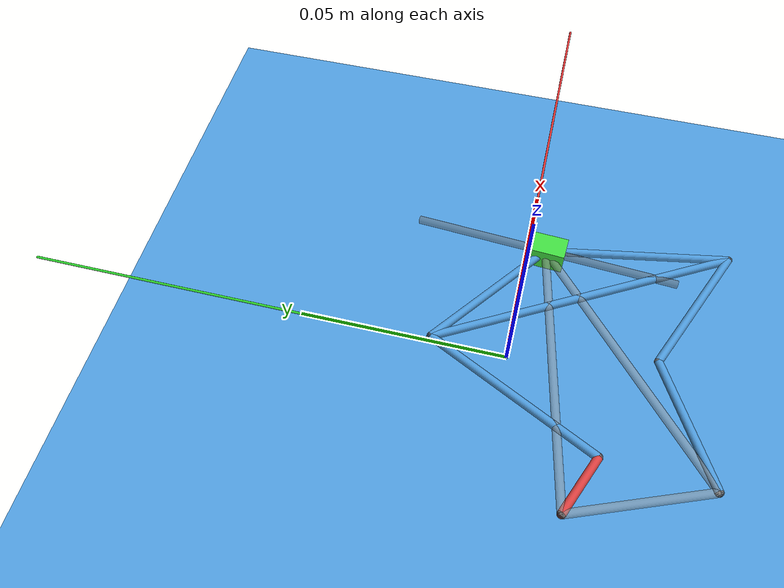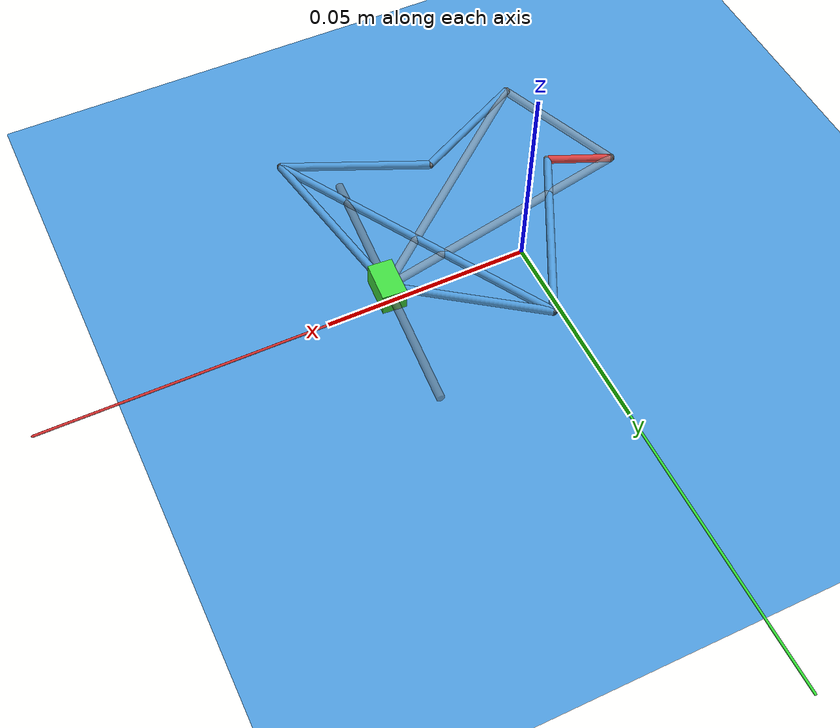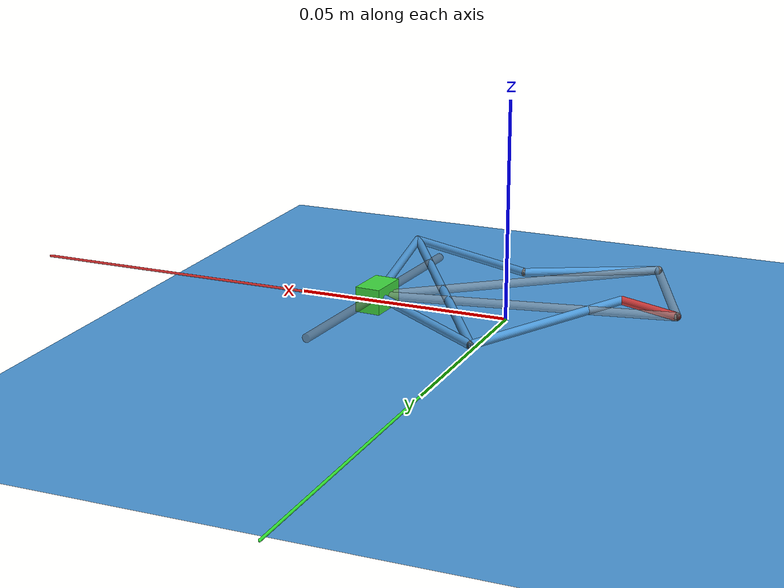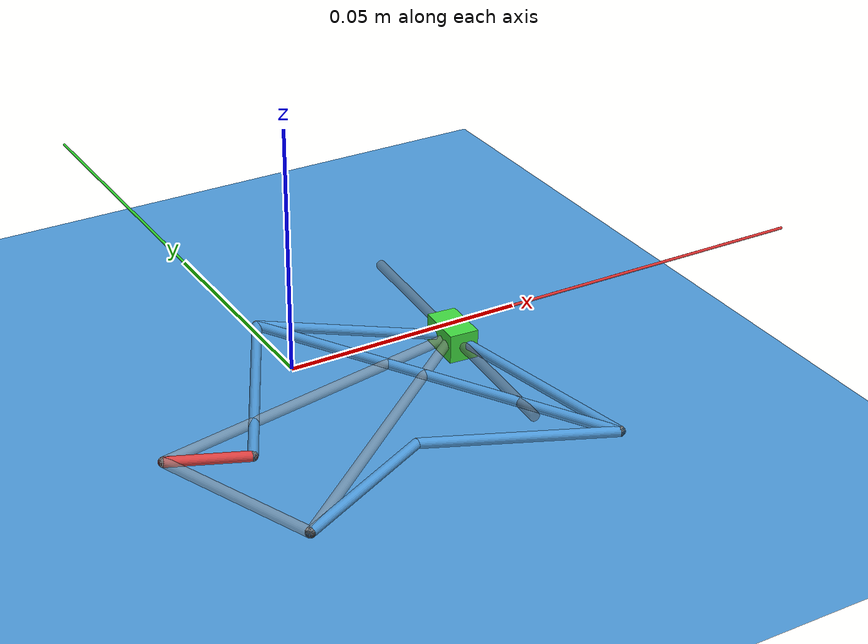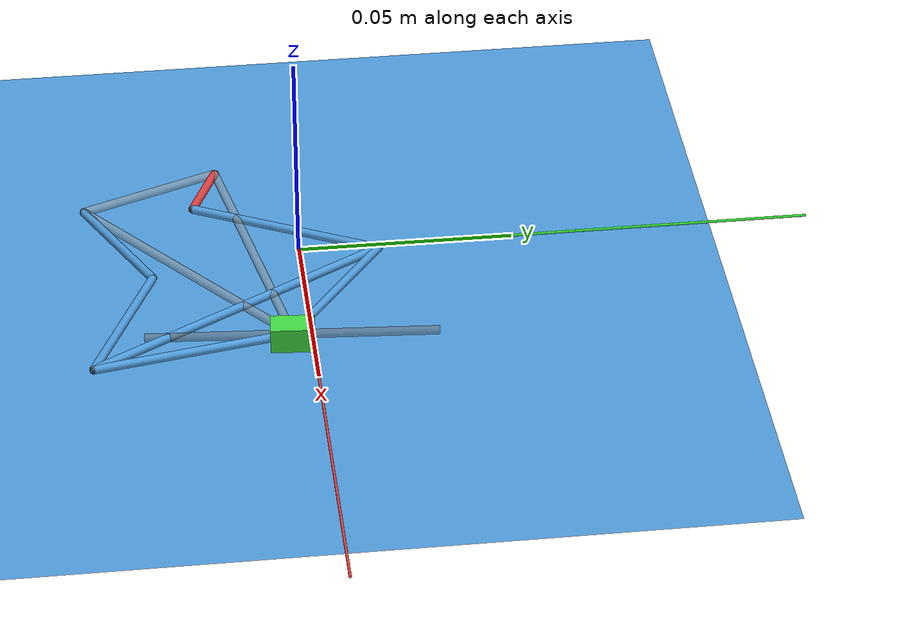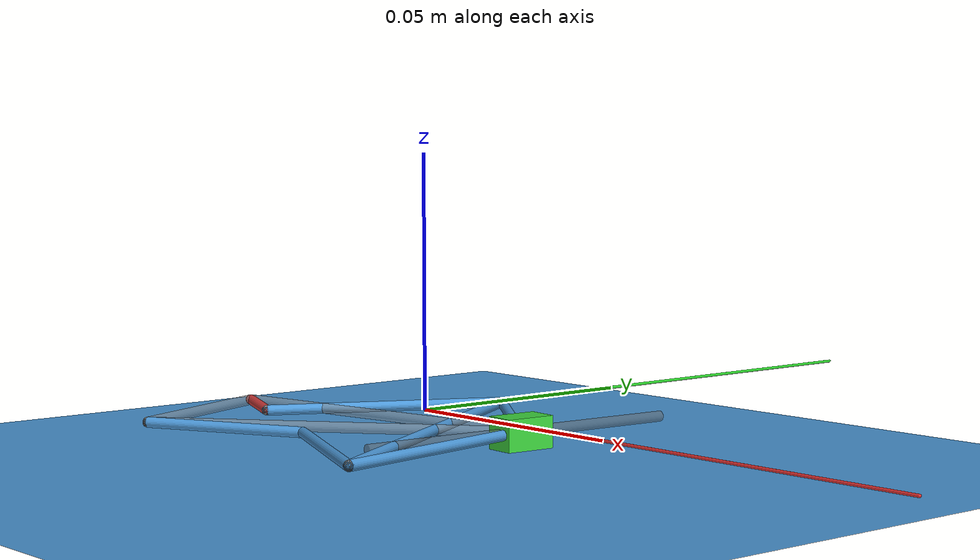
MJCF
<?xml version="1.0" ?>
<mujoco model="topo10_s0">
  <compiler angle="radian" inertiafromgeom="false"/>
  <option timestep="0.001" gravity="0 0 -9.81" integrator="implicit" iterations="500" tolerance="1e-12" noslip_iterations="10" noslip_tolerance="1e-8"/>
  <visual>
    <quality shadowsize="16384"/>
  </visual>
  <asset>
    <texture name="grid" type="2d" builtin="checker" rgb1="0.9 0.9 0.9" rgb2="0.8 0.8 0.8" width="100" height="100"/>
    <material name="grid_mat" texture="grid" texrepeat="50 50" texuniform="true"/>
  </asset>
  <default>
    <geom rgba="0.3 0.6 0.85 1" contype="0" conaffinity="0"/>
    <joint limited="false" damping="0.01"/>
    <equality solref="0.002 1" solimp="0.99 0.999 0.001 0.5 2"/>
  </default>
  <worldbody>
    <light pos="0 0 5" dir="0 0 -1" diffuse="1 1 1"/>
    <geom name="floor" type="plane" pos="0 0 -0.01" size="0.1 0.1 0.01" material="grid_mat"/>

    <!-- ======== XYZ Axes at origin ======== -->
    <geom type="capsule" fromto="0 0 0 0.12 0 0" size="0.0003" rgba="0.9 0.2 0.2 1" contype="0" conaffinity="0"/>
    <geom type="capsule" fromto="0 0 0 0 0.12 0" size="0.0003" rgba="0.2 0.9 0.2 1" contype="0" conaffinity="0"/>
    <geom type="capsule" fromto="0 0 0 0 0 0.05" size="0.0003" rgba="0.2 0.2 0.9 1" contype="0" conaffinity="0"/>
    <geom type="capsule" fromto="-0.021563436 -0.049170096 0 0.033263081 -0.004386727 0" size="0.001" rgba="0.6 0.6 0.6 0.5" contype="0" conaffinity="0"/>
    <geom type="capsule" fromto="0.033263081 -0.004386727 0 -0.034434885 -0.017326647 0" size="0.001" rgba="0.6 0.6 0.6 0.5" contype="0" conaffinity="0"/>
    <geom type="capsule" fromto="-0.034434885 -0.017326647 0 -0.021563436 -0.049170096 0" size="0.001" rgba="0.6 0.6 0.6 0.5" contype="0" conaffinity="0"/>
    <!-- Slider rail (fixed to ground) -->
    <geom type="cylinder" fromto="0.0309260 -0.0376380 0 0.0356002 0.0288646 0" size="0.001" rgba="0.4 0.4 0.4 0.5" contype="0" conaffinity="0"/>
    <body name="virtual_1" pos="0.033263081 -0.004386727 0">
      <inertial pos="0 0 0" mass="0.0016" diaginertia="1.6e-07 1.6e-07 1.6e-07"/>
      <joint name="P0" type="slide" axis="0.070113041 0.99753905 0"/>
      <geom type="box" size="0.003 0.005 0.003" euler="0 0 -0.0702" rgba="0.25 0.85 0.25 1"/>
      <site name="site_virtual_1_j0" pos="0 0 0" size="0.001"/>
      <site name="site_virtual_1_j7" pos="0 0 0" size="0.001"/>
      <body name="link_3" pos="0 0 0">
        <inertial pos="-0.007809814 -0.0074249784 0" mass="0.000995052" diaginertia="1.09197e-06 1.09197e-06 1.09197e-06"/>
        <joint name="D7" type="hinge" axis="0 0 1"/>
        <geom type="capsule" fromto="0 0 0 0.008365192 -0.045134675 0" size="0.001"/>
        <geom type="capsule" fromto="0 0 0 -0.031794634 0.02285974 0" size="0.001"/>
        <geom type="sphere" size="0.001"/>
        <geom type="capsule" fromto="0.008365192 -0.045134675 0 -0.031794634 0.02285974 0" size="0.001"/>
        <site name="site_link_3_j3" pos="0.008365192 -0.045134675 0" size="0.001"/>
        <site name="site_link_3_j5" pos="-0.031794634 0.02285974 0" size="0.001"/>
        <site name="site_link_3_j7" pos="0 0 0" size="0.001"/>
      </body>
    </body>
    <body name="link_4" pos="-0.034434885 -0.017326647 0">
      <inertial pos="0.0073073139 -0.0030854415 0" mass="0.00634560" diaginertia="1.33082e-07 1.33082e-07 1.33082e-07"/>
      <joint name="J1" type="hinge" axis="0 0 1" limited="true" range="0 2.4778759"/>
      <geom type="capsule" fromto="0 0 0 0.014614628 -0.006170883 0" size="0.001" rgba="0.85 0.25 0.25 1"/>
      <site name="site_link_4_j1" pos="0 0 0" size="0.001"/>
      <site name="site_link_4_j6" pos="0.014614628 -0.006170883 0" size="0.001"/>
      <body name="link_2" pos="0.014614628 -0.006170883 0">
        <inertial pos="0.010644352 0.020985271 0" mass="0.01882432" diaginertia="3.47426e-06 3.47426e-06 3.47426e-06"/>
        <joint name="J6" type="hinge" axis="0 0 1"/>
        <geom type="capsule" fromto="0.021288705 0.041970543 0 0 0 0" size="0.001"/>
        <site name="site_link_2_j5" pos="0.021288705 0.041970543 0" size="0.001"/>
        <site name="site_link_2_j6" pos="0 0 0" size="0.001"/>
      </body>
    </body>
    <body name="link_5" pos="-0.021563436 -0.049170096 0">
      <inertial pos="0.014572921 0.0073316551 0" mass="0.01305064" diaginertia="1.15769e-06 1.15769e-06 1.15769e-06"/>
      <joint name="J2" type="hinge" axis="0 0 1"/>
      <geom type="capsule" fromto="0 0 0 0.029145843 0.01466331 0" size="0.001"/>
      <site name="site_link_5_j2" pos="0 0 0" size="0.001"/>
      <site name="site_link_5_j4" pos="0.029145843 0.01466331 0" size="0.001"/>
      <body name="link_1" pos="0.029145843 0.01466331 0">
        <inertial pos="0.017022933 -0.0075073083 0" mass="0.01488388" diaginertia="1.71730e-06 1.71730e-06 1.71730e-06"/>
        <joint name="J4" type="hinge" axis="0 0 1"/>
        <geom type="capsule" fromto="0.034045866 -0.015014617 0 0 0 0" size="0.001"/>
        <site name="site_link_1_j3" pos="0.034045866 -0.015014617 0" size="0.001"/>
        <site name="site_link_1_j4" pos="0 0 0" size="0.001"/>
      </body>
    </body>
    <site name="site_ground_j0" pos="0.033263081 -0.004386727 0" size="0.001"/>
    <site name="site_ground_j1" pos="-0.034434885 -0.017326647 0" size="0.001"/>
    <site name="site_ground_j2" pos="-0.021563436 -0.049170096 0" size="0.001"/>
    <camera name="closeup" pos="0.000 -0.176 0.176" xyaxes="1.000 -0.000 0.000 0.000 0.707 0.707"/>
  </worldbody>
  <equality>
    <connect name="J3" site1="site_link_1_j3" site2="site_link_3_j3"/>
    <connect name="J5" site1="site_link_2_j5" site2="site_link_3_j5"/>
  </equality>
  <actuator>
    <position name="input_servo" joint="J1" kp="10" ctrlrange="0 2.4778759"/>
  </actuator>
</mujoco>
